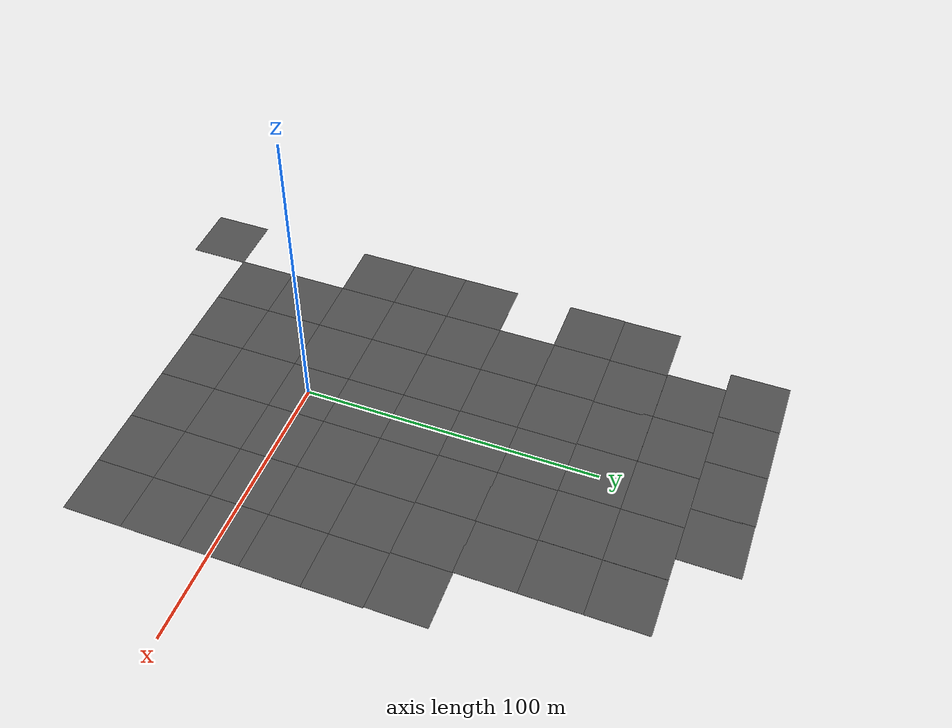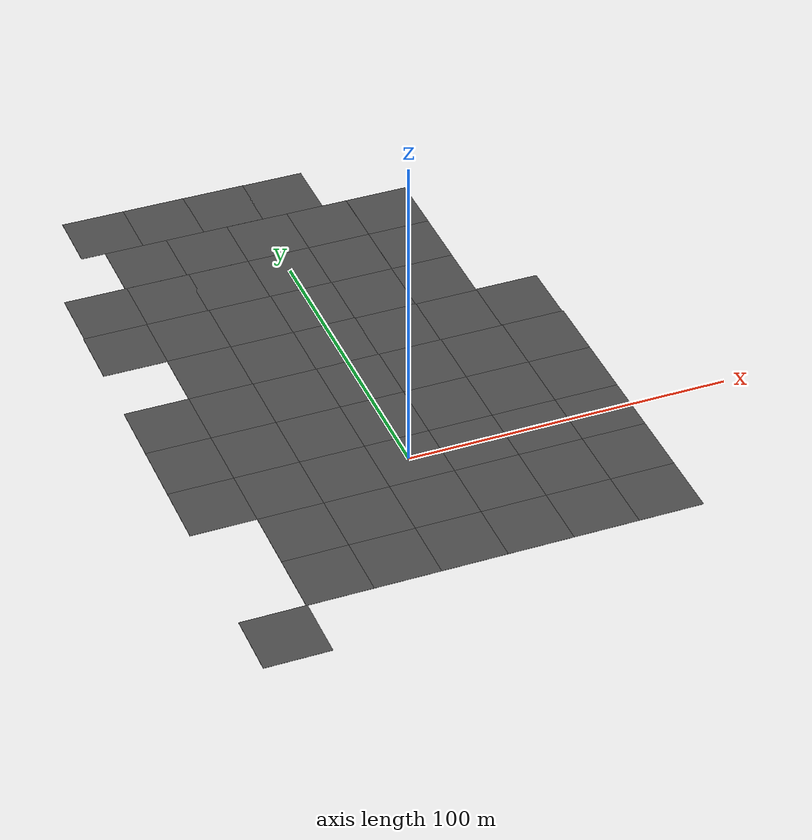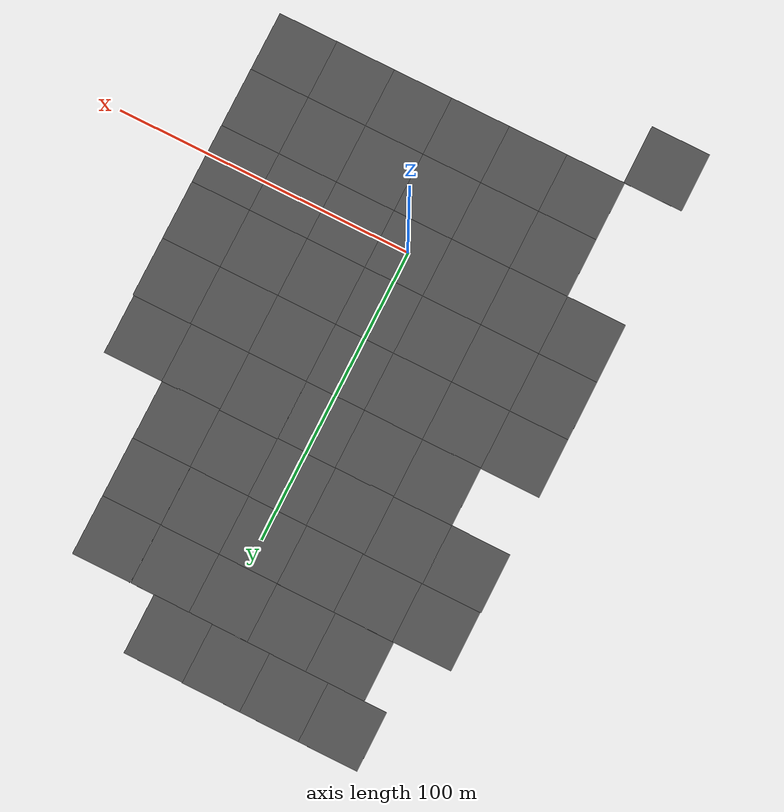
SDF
<sdf version="1.7">
 <world name="default">
  <model name="asphalt_plane">
   <static>1</static>
   <link name="link">
    <collision name="collision"><geometry><box><size>20 20 0.1</size></box></geometry></collision>
    <visual name="visual">
     <cast_shadows>0</cast_shadows>
     <geometry><box><size>20 20 0.1</size></box></geometry>
     <material>
      <script>
       <uri>model://asphalt_plane/materials/scripts</uri>
       <uri>model://asphalt_plane/materials/textures</uri>
       <name>vrc/asphalt</name>
      </script>
     </material>
    </visual>
   </link>
  </model>
  <model name="asphalt_plane_0">
   <static>1</static>
   <link name="link">
    <collision name="collision"><geometry><box><size>20 20 0.1</size></box></geometry></collision>
    <visual name="visual">
     <cast_shadows>0</cast_shadows>
     <geometry><box><size>20 20 0.1</size></box></geometry>
     <material>
      <script>
       <uri>model://asphalt_plane/materials/scripts</uri>
       <uri>model://asphalt_plane/materials/textures</uri>
       <name>vrc/asphalt</name>
      </script>
     </material>
    </visual>
   </link>
   <pose>-20 0 0 0 -0 0</pose>
  </model>
  <model name="asphalt_plane_1">
   <static>1</static>
   <link name="link">
    <collision name="collision"><geometry><box><size>20 20 0.1</size></box></geometry></collision>
    <visual name="visual">
     <cast_shadows>0</cast_shadows>
     <geometry><box><size>20 20 0.1</size></box></geometry>
     <material>
      <script>
       <uri>model://asphalt_plane/materials/scripts</uri>
       <uri>model://asphalt_plane/materials/textures</uri>
       <name>vrc/asphalt</name>
      </script>
     </material>
    </visual>
   </link>
   <pose>-40 0 0 0 -0 0</pose>
  </model>
  <model name="asphalt_plane_2">
   <static>1</static>
   <link name="link">
    <collision name="collision"><geometry><box><size>20 20 0.1</size></box></geometry></collision>
    <visual name="visual">
     <cast_shadows>0</cast_shadows>
     <geometry><box><size>20 20 0.1</size></box></geometry>
     <material>
      <script>
       <uri>model://asphalt_plane/materials/scripts</uri>
       <uri>model://asphalt_plane/materials/textures</uri>
       <name>vrc/asphalt</name>
      </script>
     </material>
    </visual>
   </link>
   <pose>20 0 0 0 -0 0</pose>
  </model>
  <model name="asphalt_plane_3">
   <static>1</static>
   <link name="link">
    <collision name="collision"><geometry><box><size>20 20 0.1</size></box></geometry></collision>
    <visual name="visual">
     <cast_shadows>0</cast_shadows>
     <geometry><box><size>20 20 0.1</size></box></geometry>
     <material>
      <script>
       <uri>model://asphalt_plane/materials/scripts</uri>
       <uri>model://asphalt_plane/materials/textures</uri>
       <name>vrc/asphalt</name>
      </script>
     </material>
    </visual>
   </link>
   <pose>40 0 0 0 -0 0</pose>
  </model>
  <model name="asphalt_plane_4">
   <static>1</static>
   <link name="link">
    <collision name="collision"><geometry><box><size>20 20 0.1</size></box></geometry></collision>
    <visual name="visual">
     <cast_shadows>0</cast_shadows>
     <geometry><box><size>20 20 0.1</size></box></geometry>
     <material>
      <script>
       <uri>model://asphalt_plane/materials/scripts</uri>
       <uri>model://asphalt_plane/materials/textures</uri>
       <name>vrc/asphalt</name>
      </script>
     </material>
    </visual>
   </link>
   <pose>0 -20 0 0 -0 0</pose>
  </model>
  <model name="asphalt_plane_5">
   <static>1</static>
   <link name="link">
    <collision name="collision"><geometry><box><size>20 20 0.1</size></box></geometry></collision>
    <visual name="visual">
     <cast_shadows>0</cast_shadows>
     <geometry><box><size>20 20 0.1</size></box></geometry>
     <material>
      <script>
       <uri>model://asphalt_plane/materials/scripts</uri>
       <uri>model://asphalt_plane/materials/textures</uri>
       <name>vrc/asphalt</name>
      </script>
     </material>
    </visual>
   </link>
   <pose>-20 -20 0 0 -0 0</pose>
  </model>
  <model name="asphalt_plane_6">
   <static>1</static>
   <link name="link">
    <collision name="collision"><geometry><box><size>20 20 0.1</size></box></geometry></collision>
    <visual name="visual">
     <cast_shadows>0</cast_shadows>
     <geometry><box><size>20 20 0.1</size></box></geometry>
     <material>
      <script>
       <uri>model://asphalt_plane/materials/scripts</uri>
       <uri>model://asphalt_plane/materials/textures</uri>
       <name>vrc/asphalt</name>
      </script>
     </material>
    </visual>
   </link>
   <pose>-40 -20 0 0 -0 0</pose>
  </model>
  <model name="asphalt_plane_7">
   <static>1</static>
   <link name="link">
    <collision name="collision"><geometry><box><size>20 20 0.1</size></box></geometry></collision>
    <visual name="visual">
     <cast_shadows>0</cast_shadows>
     <geometry><box><size>20 20 0.1</size></box></geometry>
     <material>
      <script>
       <uri>model://asphalt_plane/materials/scripts</uri>
       <uri>model://asphalt_plane/materials/textures</uri>
       <name>vrc/asphalt</name>
      </script>
     </material>
    </visual>
   </link>
   <pose>20 -20 0 0 -0 0</pose>
  </model>
  <model name="asphalt_plane_8">
   <static>1</static>
   <link name="link">
    <collision name="collision"><geometry><box><size>20 20 0.1</size></box></geometry></collision>
    <visual name="visual">
     <cast_shadows>0</cast_shadows>
     <geometry><box><size>20 20 0.1</size></box></geometry>
     <material>
      <script>
       <uri>model://asphalt_plane/materials/scripts</uri>
       <uri>model://asphalt_plane/materials/textures</uri>
       <name>vrc/asphalt</name>
      </script>
     </material>
    </visual>
   </link>
   <pose>40 -20 0 0 -0 0</pose>
  </model>
  <model name="asphalt_plane_9">
   <static>1</static>
   <link name="link">
    <collision name="collision"><geometry><box><size>20 20 0.1</size></box></geometry></collision>
    <visual name="visual">
     <cast_shadows>0</cast_shadows>
     <geometry><box><size>20 20 0.1</size></box></geometry>
     <material>
      <script>
       <uri>model://asphalt_plane/materials/scripts</uri>
       <uri>model://asphalt_plane/materials/textures</uri>
       <name>vrc/asphalt</name>
      </script>
     </material>
    </visual>
   </link>
   <pose>-40 20 0 0 -0 0</pose>
  </model>
  <model name="asphalt_plane_10">
   <static>1</static>
   <link name="link">
    <collision name="collision"><geometry><box><size>20 20 0.1</size></box></geometry></collision>
    <visual name="visual">
     <cast_shadows>0</cast_shadows>
     <geometry><box><size>20 20 0.1</size></box></geometry>
     <material>
      <script>
       <uri>model://asphalt_plane/materials/scripts</uri>
       <uri>model://asphalt_plane/materials/textures</uri>
       <name>vrc/asphalt</name>
      </script>
     </material>
    </visual>
   </link>
   <pose>-20 20 0 0 -0 0</pose>
  </model>
  <model name="asphalt_plane_11">
   <static>1</static>
   <link name="link">
    <collision name="collision"><geometry><box><size>20 20 0.1</size></box></geometry></collision>
    <visual name="visual">
     <cast_shadows>0</cast_shadows>
     <geometry><box><size>20 20 0.1</size></box></geometry>
     <material>
      <script>
       <uri>model://asphalt_plane/materials/scripts</uri>
       <uri>model://asphalt_plane/materials/textures</uri>
       <name>vrc/asphalt</name>
      </script>
     </material>
    </visual>
   </link>
   <pose>0 20 0 0 -0 0</pose>
  </model>
  <model name="asphalt_plane_12">
   <static>1</static>
   <link name="link">
    <collision name="collision"><geometry><box><size>20 20 0.1</size></box></geometry></collision>
    <visual name="visual">
     <cast_shadows>0</cast_shadows>
     <geometry><box><size>20 20 0.1</size></box></geometry>
     <material>
      <script>
       <uri>model://asphalt_plane/materials/scripts</uri>
       <uri>model://asphalt_plane/materials/textures</uri>
       <name>vrc/asphalt</name>
      </script>
     </material>
    </visual>
   </link>
   <pose>20 20 0 0 -0 0</pose>
  </model>
  <model name="asphalt_plane_13">
   <static>1</static>
   <link name="link">
    <collision name="collision"><geometry><box><size>20 20 0.1</size></box></geometry></collision>
    <visual name="visual">
     <cast_shadows>0</cast_shadows>
     <geometry><box><size>20 20 0.1</size></box></geometry>
     <material>
      <script>
       <uri>model://asphalt_plane/materials/scripts</uri>
       <uri>model://asphalt_plane/materials/textures</uri>
       <name>vrc/asphalt</name>
      </script>
     </material>
    </visual>
   </link>
   <pose>40 20 0 0 -0 0</pose>
  </model>
  <model name="asphalt_plane_14">
   <static>1</static>
   <link name="link">
    <collision name="collision"><geometry><box><size>20 20 0.1</size></box></geometry></collision>
    <visual name="visual">
     <cast_shadows>0</cast_shadows>
     <geometry><box><size>20 20 0.1</size></box></geometry>
     <material>
      <script>
       <uri>model://asphalt_plane/materials/scripts</uri>
       <uri>model://asphalt_plane/materials/textures</uri>
       <name>vrc/asphalt</name>
      </script>
     </material>
    </visual>
   </link>
   <pose>60 0 0 0 -0 0</pose>
  </model>
  <model name="asphalt_plane_15">
   <static>1</static>
   <link name="link">
    <collision name="collision"><geometry><box><size>20 20 0.1</size></box></geometry></collision>
    <visual name="visual">
     <cast_shadows>0</cast_shadows>
     <geometry><box><size>20 20 0.1</size></box></geometry>
     <material>
      <script>
       <uri>model://asphalt_plane/materials/scripts</uri>
       <uri>model://asphalt_plane/materials/textures</uri>
       <name>vrc/asphalt</name>
      </script>
     </material>
    </visual>
   </link>
   <pose>60 20 0 0 -0 0</pose>
  </model>
  <model name="asphalt_plane_16">
   <static>1</static>
   <link name="link">
    <collision name="collision"><geometry><box><size>20 20 0.1</size></box></geometry></collision>
    <visual name="visual">
     <cast_shadows>0</cast_shadows>
     <geometry><box><size>20 20 0.1</size></box></geometry>
     <material>
      <script>
       <uri>model://asphalt_plane/materials/scripts</uri>
       <uri>model://asphalt_plane/materials/textures</uri>
       <name>vrc/asphalt</name>
      </script>
     </material>
    </visual>
   </link>
   <pose>60 -20 0 0 -0 0</pose>
  </model>
  <model name="asphalt_plane_17">
   <static>1</static>
   <link name="link">
    <collision name="collision"><geometry><box><size>20 20 0.1</size></box></geometry></collision>
    <visual name="visual">
     <cast_shadows>0</cast_shadows>
     <geometry><box><size>20 20 0.1</size></box></geometry>
     <material>
      <script>
       <uri>model://asphalt_plane/materials/scripts</uri>
       <uri>model://asphalt_plane/materials/textures</uri>
       <name>vrc/asphalt</name>
      </script>
     </material>
    </visual>
   </link>
   <pose>40 -40 0 0 -0 0</pose>
  </model>
  <model name="asphalt_plane_18">
   <static>1</static>
   <link name="link">
    <collision name="collision"><geometry><box><size>20 20 0.1</size></box></geometry></collision>
    <visual name="visual">
     <cast_shadows>0</cast_shadows>
     <geometry><box><size>20 20 0.1</size></box></geometry>
     <material>
      <script>
       <uri>model://asphalt_plane/materials/scripts</uri>
       <uri>model://asphalt_plane/materials/textures</uri>
       <name>vrc/asphalt</name>
      </script>
     </material>
    </visual>
   </link>
   <pose>60 -40 0 0 -0 0</pose>
  </model>
  <model name="asphalt_plane_19">
   <static>1</static>
   <link name="link">
    <collision name="collision"><geometry><box><size>20 20 0.1</size></box></geometry></collision>
    <visual name="visual">
     <cast_shadows>0</cast_shadows>
     <geometry><box><size>20 20 0.1</size></box></geometry>
     <material>
      <script>
       <uri>model://asphalt_plane/materials/scripts</uri>
       <uri>model://asphalt_plane/materials/textures</uri>
       <name>vrc/asphalt</name>
      </script>
     </material>
    </visual>
   </link>
   <pose>20 -40 0 0 -0 0</pose>
  </model>
  <model name="asphalt_plane_20">
   <static>1</static>
   <link name="link">
    <collision name="collision"><geometry><box><size>20 20 0.1</size></box></geometry></collision>
    <visual name="visual">
     <cast_shadows>0</cast_shadows>
     <geometry><box><size>20 20 0.1</size></box></geometry>
     <material>
      <script>
       <uri>model://asphalt_plane/materials/scripts</uri>
       <uri>model://asphalt_plane/materials/textures</uri>
       <name>vrc/asphalt</name>
      </script>
     </material>
    </visual>
   </link>
   <pose>0 -40 0 0 -0 0</pose>
  </model>
  <model name="asphalt_plane_21">
   <static>1</static>
   <link name="link">
    <collision name="collision"><geometry><box><size>20 20 0.1</size></box></geometry></collision>
    <visual name="visual">
     <cast_shadows>0</cast_shadows>
     <geometry><box><size>20 20 0.1</size></box></geometry>
     <material>
      <script>
       <uri>model://asphalt_plane/materials/scripts</uri>
       <uri>model://asphalt_plane/materials/textures</uri>
       <name>vrc/asphalt</name>
      </script>
     </material>
    </visual>
   </link>
   <pose>-20 -40 0 0 -0 0</pose>
  </model>
  <model name="asphalt_plane_22">
   <static>1</static>
   <link name="link">
    <collision name="collision"><geometry><box><size>20 20 0.1</size></box></geometry></collision>
    <visual name="visual">
     <cast_shadows>0</cast_shadows>
     <geometry><box><size>20 20 0.1</size></box></geometry>
     <material>
      <script>
       <uri>model://asphalt_plane/materials/scripts</uri>
       <uri>model://asphalt_plane/materials/textures</uri>
       <name>vrc/asphalt</name>
      </script>
     </material>
    </visual>
   </link>
   <pose>-40 -40 0 0 -0 0</pose>
  </model>
  <model name="asphalt_plane_25">
   <static>1</static>
   <link name="link">
    <collision name="collision"><geometry><box><size>20 20 0.1</size></box></geometry></collision>
    <visual name="visual">
     <cast_shadows>0</cast_shadows>
     <geometry><box><size>20 20 0.1</size></box></geometry>
     <material>
      <script>
       <uri>model://asphalt_plane/materials/scripts</uri>
       <uri>model://asphalt_plane/materials/textures</uri>
       <name>vrc/asphalt</name>
      </script>
     </material>
    </visual>
   </link>
   <pose>-60 0 0 0 -0 0</pose>
  </model>
  <model name="asphalt_plane_26">
   <static>1</static>
   <link name="link">
    <collision name="collision"><geometry><box><size>20 20 0.1</size></box></geometry></collision>
    <visual name="visual">
     <cast_shadows>0</cast_shadows>
     <geometry><box><size>20 20 0.1</size></box></geometry>
     <material>
      <script>
       <uri>model://asphalt_plane/materials/scripts</uri>
       <uri>model://asphalt_plane/materials/textures</uri>
       <name>vrc/asphalt</name>
      </script>
     </material>
    </visual>
   </link>
   <pose>-60 20 0 0 -0 0</pose>
  </model>
  <model name="asphalt_plane_27">
   <static>1</static>
   <link name="link">
    <collision name="collision"><geometry><box><size>20 20 0.1</size></box></geometry></collision>
    <visual name="visual">
     <cast_shadows>0</cast_shadows>
     <geometry><box><size>20 20 0.1</size></box></geometry>
     <material>
      <script>
       <uri>model://asphalt_plane/materials/scripts</uri>
       <uri>model://asphalt_plane/materials/textures</uri>
       <name>vrc/asphalt</name>
      </script>
     </material>
    </visual>
   </link>
   <pose>-60 40 0 0 -0 0</pose>
  </model>
  <model name="asphalt_plane_28">
   <static>1</static>
   <link name="link">
    <collision name="collision"><geometry><box><size>20 20 0.1</size></box></geometry></collision>
    <visual name="visual">
     <cast_shadows>0</cast_shadows>
     <geometry><box><size>20 20 0.1</size></box></geometry>
     <material>
      <script>
       <uri>model://asphalt_plane/materials/scripts</uri>
       <uri>model://asphalt_plane/materials/textures</uri>
       <name>vrc/asphalt</name>
      </script>
     </material>
    </visual>
   </link>
   <pose>-40 40 0 0 -0 0</pose>
  </model>
  <model name="asphalt_plane_29">
   <static>1</static>
   <link name="link">
    <collision name="collision"><geometry><box><size>20 20 0.1</size></box></geometry></collision>
    <visual name="visual">
     <cast_shadows>0</cast_shadows>
     <geometry><box><size>20 20 0.1</size></box></geometry>
     <material>
      <script>
       <uri>model://asphalt_plane/materials/scripts</uri>
       <uri>model://asphalt_plane/materials/textures</uri>
       <name>vrc/asphalt</name>
      </script>
     </material>
    </visual>
   </link>
   <pose>-20 40 0 0 -0 0</pose>
  </model>
  <model name="asphalt_plane_30">
   <static>1</static>
   <link name="link">
    <collision name="collision"><geometry><box><size>20 20 0.1</size></box></geometry></collision>
    <visual name="visual">
     <cast_shadows>0</cast_shadows>
     <geometry><box><size>20 20 0.1</size></box></geometry>
     <material>
      <script>
       <uri>model://asphalt_plane/materials/scripts</uri>
       <uri>model://asphalt_plane/materials/textures</uri>
       <name>vrc/asphalt</name>
      </script>
     </material>
    </visual>
   </link>
   <pose>0 40 0 0 -0 0</pose>
  </model>
  <model name="asphalt_plane_31">
   <static>1</static>
   <link name="link">
    <collision name="collision"><geometry><box><size>20 20 0.1</size></box></geometry></collision>
    <visual name="visual">
     <cast_shadows>0</cast_shadows>
     <geometry><box><size>20 20 0.1</size></box></geometry>
     <material>
      <script>
       <uri>model://asphalt_plane/materials/scripts</uri>
       <uri>model://asphalt_plane/materials/textures</uri>
       <name>vrc/asphalt</name>
      </script>
     </material>
    </visual>
   </link>
   <pose>20 40 0 0 -0 0</pose>
  </model>
  <model name="asphalt_plane_32">
   <static>1</static>
   <link name="link">
    <collision name="collision"><geometry><box><size>20 20 0.1</size></box></geometry></collision>
    <visual name="visual">
     <cast_shadows>0</cast_shadows>
     <geometry><box><size>20 20 0.1</size></box></geometry>
     <material>
      <script>
       <uri>model://asphalt_plane/materials/scripts</uri>
       <uri>model://asphalt_plane/materials/textures</uri>
       <name>vrc/asphalt</name>
      </script>
     </material>
    </visual>
   </link>
   <pose>40 40 0 0 -0 0</pose>
  </model>
  <model name="asphalt_plane_33">
   <static>1</static>
   <link name="link">
    <collision name="collision"><geometry><box><size>20 20 0.1</size></box></geometry></collision>
    <visual name="visual">
     <cast_shadows>0</cast_shadows>
     <geometry><box><size>20 20 0.1</size></box></geometry>
     <material>
      <script>
       <uri>model://asphalt_plane/materials/scripts</uri>
       <uri>model://asphalt_plane/materials/textures</uri>
       <name>vrc/asphalt</name>
      </script>
     </material>
    </visual>
   </link>
   <pose>60 40 0 0 -0 0</pose>
  </model>
  <model name="asphalt_plane_29_clone_0">
   <static>1</static>
   <link name="link">
    <collision name="collision"><geometry><box><size>20 20 0.1</size></box></geometry></collision>
    <visual name="visual">
     <cast_shadows>0</cast_shadows>
     <geometry><box><size>20 20 0.1</size></box></geometry>
     <material>
      <script>
       <uri>model://asphalt_plane/materials/scripts</uri>
       <uri>model://asphalt_plane/materials/textures</uri>
       <name>vrc/asphalt</name>
      </script>
     </material>
    </visual>
   </link>
   <pose>-40.078 59.8658 0 0 -0 0</pose>
  </model>
  <model name="asphalt_plane_29_clone_1">
   <static>1</static>
   <link name="link">
    <collision name="collision"><geometry><box><size>20 20 0.1</size></box></geometry></collision>
    <visual name="visual">
     <cast_shadows>0</cast_shadows>
     <geometry><box><size>20 20 0.1</size></box></geometry>
     <material>
      <script>
       <uri>model://asphalt_plane/materials/scripts</uri>
       <uri>model://asphalt_plane/materials/textures</uri>
       <name>vrc/asphalt</name>
      </script>
     </material>
    </visual>
   </link>
   <pose>-20.0816 59.8854 0 0 -0 0</pose>
  </model>
  <model name="asphalt_plane_29_clone_2">
   <static>1</static>
   <link name="link">
    <collision name="collision"><geometry><box><size>20 20 0.1</size></box></geometry></collision>
    <visual name="visual">
     <cast_shadows>0</cast_shadows>
     <geometry><box><size>20 20 0.1</size></box></geometry>
     <material>
      <script>
       <uri>model://asphalt_plane/materials/scripts</uri>
       <uri>model://asphalt_plane/materials/textures</uri>
       <name>vrc/asphalt</name>
      </script>
     </material>
    </visual>
   </link>
   <pose>-0.148674 59.8969 0 0 -0 0</pose>
  </model>
  <model name="asphalt_plane_29_clone_3">
   <static>1</static>
   <link name="link">
    <collision name="collision"><geometry><box><size>20 20 0.1</size></box></geometry></collision>
    <visual name="visual">
     <cast_shadows>0</cast_shadows>
     <geometry><box><size>20 20 0.1</size></box></geometry>
     <material>
      <script>
       <uri>model://asphalt_plane/materials/scripts</uri>
       <uri>model://asphalt_plane/materials/textures</uri>
       <name>vrc/asphalt</name>
      </script>
     </material>
    </visual>
   </link>
   <pose>19.7312 59.944 0 0 -0 0</pose>
  </model>
  <model name="asphalt_plane_29_clone_4">
   <static>1</static>
   <link name="link">
    <collision name="collision"><geometry><box><size>20 20 0.1</size></box></geometry></collision>
    <visual name="visual">
     <cast_shadows>0</cast_shadows>
     <geometry><box><size>20 20 0.1</size></box></geometry>
     <material>
      <script>
       <uri>model://asphalt_plane/materials/scripts</uri>
       <uri>model://asphalt_plane/materials/textures</uri>
       <name>vrc/asphalt</name>
      </script>
     </material>
    </visual>
   </link>
   <pose>39.6898 59.9247 0 0 -0 0</pose>
  </model>
  <model name="asphalt_plane_29_clone_5">
   <static>1</static>
   <link name="link">
    <collision name="collision"><geometry><box><size>20 20 0.1</size></box></geometry></collision>
    <visual name="visual">
     <cast_shadows>0</cast_shadows>
     <geometry><box><size>20 20 0.1</size></box></geometry>
     <material>
      <script>
       <uri>model://asphalt_plane/materials/scripts</uri>
       <uri>model://asphalt_plane/materials/textures</uri>
       <name>vrc/asphalt</name>
      </script>
     </material>
    </visual>
   </link>
   <pose>59.6165 59.9836 0 0 -0 0</pose>
  </model>
  <model name="asphalt_plane_29_clone_6">
   <static>1</static>
   <link name="link">
    <collision name="collision"><geometry><box><size>20 20 0.1</size></box></geometry></collision>
    <visual name="visual">
     <cast_shadows>0</cast_shadows>
     <geometry><box><size>20 20 0.1</size></box></geometry>
     <material>
      <script>
       <uri>model://asphalt_plane/materials/scripts</uri>
       <uri>model://asphalt_plane/materials/textures</uri>
       <name>vrc/asphalt</name>
      </script>
     </material>
    </visual>
   </link>
   <pose>-59.9549 79.6884 0 0 -0 0</pose>
  </model>
  <model name="asphalt_plane_29_clone_7">
   <static>1</static>
   <link name="link">
    <collision name="collision"><geometry><box><size>20 20 0.1</size></box></geometry></collision>
    <visual name="visual">
     <cast_shadows>0</cast_shadows>
     <geometry><box><size>20 20 0.1</size></box></geometry>
     <material>
      <script>
       <uri>model://asphalt_plane/materials/scripts</uri>
       <uri>model://asphalt_plane/materials/textures</uri>
       <name>vrc/asphalt</name>
      </script>
     </material>
    </visual>
   </link>
   <pose>-40.0415 79.729 0 0 -0 0</pose>
  </model>
  <model name="asphalt_plane_29_clone_8">
   <static>1</static>
   <link name="link">
    <collision name="collision"><geometry><box><size>20 20 0.1</size></box></geometry></collision>
    <visual name="visual">
     <cast_shadows>0</cast_shadows>
     <geometry><box><size>20 20 0.1</size></box></geometry>
     <material>
      <script>
       <uri>model://asphalt_plane/materials/scripts</uri>
       <uri>model://asphalt_plane/materials/textures</uri>
       <name>vrc/asphalt</name>
      </script>
     </material>
    </visual>
   </link>
   <pose>-20.1675 79.6923 0 0 -0 0</pose>
  </model>
  <model name="asphalt_plane_29_clone_9">
   <static>1</static>
   <link name="link">
    <collision name="collision"><geometry><box><size>20 20 0.1</size></box></geometry></collision>
    <visual name="visual">
     <cast_shadows>0</cast_shadows>
     <geometry><box><size>20 20 0.1</size></box></geometry>
     <material>
      <script>
       <uri>model://asphalt_plane/materials/scripts</uri>
       <uri>model://asphalt_plane/materials/textures</uri>
       <name>vrc/asphalt</name>
      </script>
     </material>
    </visual>
   </link>
   <pose>-0.239619 79.681 0 0 -0 0</pose>
  </model>
  <model name="asphalt_plane_29_clone_10">
   <static>1</static>
   <link name="link">
    <collision name="collision"><geometry><box><size>20 20 0.1</size></box></geometry></collision>
    <visual name="visual">
     <cast_shadows>0</cast_shadows>
     <geometry><box><size>20 20 0.1</size></box></geometry>
     <material>
      <script>
       <uri>model://asphalt_plane/materials/scripts</uri>
       <uri>model://asphalt_plane/materials/textures</uri>
       <name>vrc/asphalt</name>
      </script>
     </material>
    </visual>
   </link>
   <pose>19.7398 79.6486 0 0 -0 0</pose>
  </model>
  <model name="asphalt_plane_29_clone_11">
   <static>1</static>
   <link name="link">
    <collision name="collision"><geometry><box><size>20 20 0.1</size></box></geometry></collision>
    <visual name="visual">
     <cast_shadows>0</cast_shadows>
     <geometry><box><size>20 20 0.1</size></box></geometry>
     <material>
      <script>
       <uri>model://asphalt_plane/materials/scripts</uri>
       <uri>model://asphalt_plane/materials/textures</uri>
       <name>vrc/asphalt</name>
      </script>
     </material>
    </visual>
   </link>
   <pose>39.5063 79.62 0 0 -0 0</pose>
  </model>
  <model name="asphalt_plane_29_clone_13">
   <static>1</static>
   <link name="link">
    <collision name="collision"><geometry><box><size>20 20 0.1</size></box></geometry></collision>
    <visual name="visual">
     <cast_shadows>0</cast_shadows>
     <geometry><box><size>20 20 0.1</size></box></geometry>
     <material>
      <script>
       <uri>model://asphalt_plane/materials/scripts</uri>
       <uri>model://asphalt_plane/materials/textures</uri>
       <name>vrc/asphalt</name>
      </script>
     </material>
    </visual>
   </link>
   <pose>19.5373 99.6133 0 0 -0 0</pose>
  </model>
  <model name="asphalt_plane_29_clone_20">
   <static>1</static>
   <link name="link">
    <collision name="collision"><geometry><box><size>20 20 0.1</size></box></geometry></collision>
    <visual name="visual">
     <cast_shadows>0</cast_shadows>
     <geometry><box><size>20 20 0.1</size></box></geometry>
     <material>
      <script>
       <uri>model://asphalt_plane/materials/scripts</uri>
       <uri>model://asphalt_plane/materials/textures</uri>
       <name>vrc/asphalt</name>
      </script>
     </material>
    </visual>
   </link>
   <pose>-39.7555 99.6875 0 0 -0 0</pose>
  </model>
  <model name="asphalt_plane_29_clone_14_clone">
   <static>1</static>
   <link name="link">
    <collision name="collision"><geometry><box><size>20 20 0.1</size></box></geometry></collision>
    <visual name="visual">
     <cast_shadows>0</cast_shadows>
     <geometry><box><size>20 20 0.1</size></box></geometry>
     <material>
      <script>
       <uri>model://asphalt_plane/materials/scripts</uri>
       <uri>model://asphalt_plane/materials/textures</uri>
       <name>vrc/asphalt</name>
      </script>
     </material>
    </visual>
   </link>
   <pose>39.5503 99.6114 0 0 -0 0</pose>
  </model>
  <model name="asphalt_plane_29_clone_14_clone_0">
   <static>1</static>
   <link name="link">
    <collision name="collision"><geometry><box><size>20 20 0.1</size></box></geometry></collision>
    <visual name="visual">
     <cast_shadows>0</cast_shadows>
     <geometry><box><size>20 20 0.1</size></box></geometry>
     <material>
      <script>
       <uri>model://asphalt_plane/materials/scripts</uri>
       <uri>model://asphalt_plane/materials/textures</uri>
       <name>vrc/asphalt</name>
      </script>
     </material>
    </visual>
   </link>
   <pose>39.5797 119.6 0 0 -0 0</pose>
  </model>
  <model name="asphalt_plane_29_clone_14_clone_1">
   <static>1</static>
   <link name="link">
    <collision name="collision"><geometry><box><size>20 20 0.1</size></box></geometry></collision>
    <visual name="visual">
     <cast_shadows>0</cast_shadows>
     <geometry><box><size>20 20 0.1</size></box></geometry>
     <material>
      <script>
       <uri>model://asphalt_plane/materials/scripts</uri>
       <uri>model://asphalt_plane/materials/textures</uri>
       <name>vrc/asphalt</name>
      </script>
     </material>
    </visual>
   </link>
   <pose>19.5558 119.59 0 0 -0 0</pose>
  </model>
  <model name="asphalt_plane_29_clone_20_clone">
   <static>1</static>
   <link name="link">
    <collision name="collision"><geometry><box><size>20 20 0.1</size></box></geometry></collision>
    <visual name="visual">
     <cast_shadows>0</cast_shadows>
     <geometry><box><size>20 20 0.1</size></box></geometry>
     <material>
      <script>
       <uri>model://asphalt_plane/materials/scripts</uri>
       <uri>model://asphalt_plane/materials/textures</uri>
       <name>vrc/asphalt</name>
      </script>
     </material>
    </visual>
   </link>
   <pose>-0.436552 99.6675 0 0 -0 0</pose>
  </model>
  <model name="asphalt_plane_29_clone_20_clone_0">
   <static>1</static>
   <link name="link">
    <collision name="collision"><geometry><box><size>20 20 0.1</size></box></geometry></collision>
    <visual name="visual">
     <cast_shadows>0</cast_shadows>
     <geometry><box><size>20 20 0.1</size></box></geometry>
     <material>
      <script>
       <uri>model://asphalt_plane/materials/scripts</uri>
       <uri>model://asphalt_plane/materials/textures</uri>
       <name>vrc/asphalt</name>
      </script>
     </material>
    </visual>
   </link>
   <pose>-20.4222 99.6859 0 0 -0 0</pose>
  </model>
  <model name="asphalt_plane_29_clone_20_clone_0_clone">
   <static>1</static>
   <link name="link">
    <collision name="collision"><geometry><box><size>20 20 0.1</size></box></geometry></collision>
    <visual name="visual">
     <cast_shadows>0</cast_shadows>
     <geometry><box><size>20 20 0.1</size></box></geometry>
     <material>
      <script>
       <uri>model://asphalt_plane/materials/scripts</uri>
       <uri>model://asphalt_plane/materials/textures</uri>
       <name>vrc/asphalt</name>
      </script>
     </material>
    </visual>
   </link>
   <pose>-0.417226 119.635 0 0 -0 0</pose>
  </model>
  <model name="asphalt_plane_29_clone_20_clone_0_clone_0">
   <static>1</static>
   <link name="link">
    <collision name="collision"><geometry><box><size>20 20 0.1</size></box></geometry></collision>
    <visual name="visual">
     <cast_shadows>0</cast_shadows>
     <geometry><box><size>20 20 0.1</size></box></geometry>
     <material>
      <script>
       <uri>model://asphalt_plane/materials/scripts</uri>
       <uri>model://asphalt_plane/materials/textures</uri>
       <name>vrc/asphalt</name>
      </script>
     </material>
    </visual>
   </link>
   <pose>-20.394 119.697 0 0 -0 0</pose>
  </model>
  <model name="asphalt_plane_29_clone_20_clone_0_clone_1">
   <static>1</static>
   <link name="link">
    <collision name="collision"><geometry><box><size>20 20 0.1</size></box></geometry></collision>
    <visual name="visual">
     <cast_shadows>0</cast_shadows>
     <geometry><box><size>20 20 0.1</size></box></geometry>
     <material>
      <script>
       <uri>model://asphalt_plane/materials/scripts</uri>
       <uri>model://asphalt_plane/materials/textures</uri>
       <name>vrc/asphalt</name>
      </script>
     </material>
    </visual>
   </link>
   <pose>-40.366 119.698 0 0 -0 0</pose>
  </model>
  <model name="asphalt_plane_29_clone_13_clone">
   <static>1</static>
   <link name="link">
    <collision name="collision"><geometry><box><size>20 20 0.1</size></box></geometry></collision>
    <visual name="visual">
     <cast_shadows>0</cast_shadows>
     <geometry><box><size>20 20 0.1</size></box></geometry>
     <material>
      <script>
       <uri>model://asphalt_plane/materials/scripts</uri>
       <uri>model://asphalt_plane/materials/textures</uri>
       <name>vrc/asphalt</name>
      </script>
     </material>
    </visual>
   </link>
   <pose>-59.7553 99.6806 0 0 -0 0</pose>
  </model>
  <model name="asphalt_plane_29_clone_13_clone_18">
   <static>1</static>
   <link name="link">
    <collision name="collision"><geometry><box><size>20 20 0.1</size></box></geometry></collision>
    <visual name="visual">
     <cast_shadows>0</cast_shadows>
     <geometry><box><size>20 20 0.1</size></box></geometry>
     <material>
      <script>
       <uri>model://asphalt_plane/materials/scripts</uri>
       <uri>model://asphalt_plane/materials/textures</uri>
       <name>vrc/asphalt</name>
      </script>
     </material>
    </visual>
   </link>
   <pose>-48.0013 139.685 0 0 -0 0</pose>
  </model>
  <model name="asphalt_plane_29_clone_13_clone_19">
   <static>1</static>
   <link name="link">
    <collision name="collision"><geometry><box><size>20 20 0.1</size></box></geometry></collision>
    <visual name="visual">
     <cast_shadows>0</cast_shadows>
     <geometry><box><size>20 20 0.1</size></box></geometry>
     <material>
      <script>
       <uri>model://asphalt_plane/materials/scripts</uri>
       <uri>model://asphalt_plane/materials/textures</uri>
       <name>vrc/asphalt</name>
      </script>
     </material>
    </visual>
   </link>
   <pose>-28.0321 139.682 0 0 -0 0</pose>
  </model>
  <model name="asphalt_plane_29_clone_13_clone_20">
   <static>1</static>
   <link name="link">
    <collision name="collision"><geometry><box><size>20 20 0.1</size></box></geometry></collision>
    <visual name="visual">
     <cast_shadows>0</cast_shadows>
     <geometry><box><size>20 20 0.1</size></box></geometry>
     <material>
      <script>
       <uri>model://asphalt_plane/materials/scripts</uri>
       <uri>model://asphalt_plane/materials/textures</uri>
       <name>vrc/asphalt</name>
      </script>
     </material>
    </visual>
   </link>
   <pose>-8.15777 139.648 0 0 -0 0</pose>
  </model>
  <model name="asphalt_plane_29_clone_13_clone_21">
   <static>1</static>
   <link name="link">
    <collision name="collision"><geometry><box><size>20 20 0.1</size></box></geometry></collision>
    <visual name="visual">
     <cast_shadows>0</cast_shadows>
     <geometry><box><size>20 20 0.1</size></box></geometry>
     <material>
      <script>
       <uri>model://asphalt_plane/materials/scripts</uri>
       <uri>model://asphalt_plane/materials/textures</uri>
       <name>vrc/asphalt</name>
      </script>
     </material>
    </visual>
   </link>
   <pose>11.5721 139.526 0 0 -0 0</pose>
  </model>
  <model name="asphalt_plane_29_clone_13_clone_31">
   <static>1</static>
   <link name="link">
    <collision name="collision"><geometry><box><size>20 20 0.1</size></box></geometry></collision>
    <visual name="visual">
     <cast_shadows>0</cast_shadows>
     <geometry><box><size>20 20 0.1</size></box></geometry>
     <material>
      <script>
       <uri>model://asphalt_plane/materials/scripts</uri>
       <uri>model://asphalt_plane/materials/textures</uri>
       <name>vrc/asphalt</name>
      </script>
     </material>
    </visual>
   </link>
   <pose>-59.5982 -59.9051 0 0 -0 0</pose>
  </model>
 </world>
</sdf>
